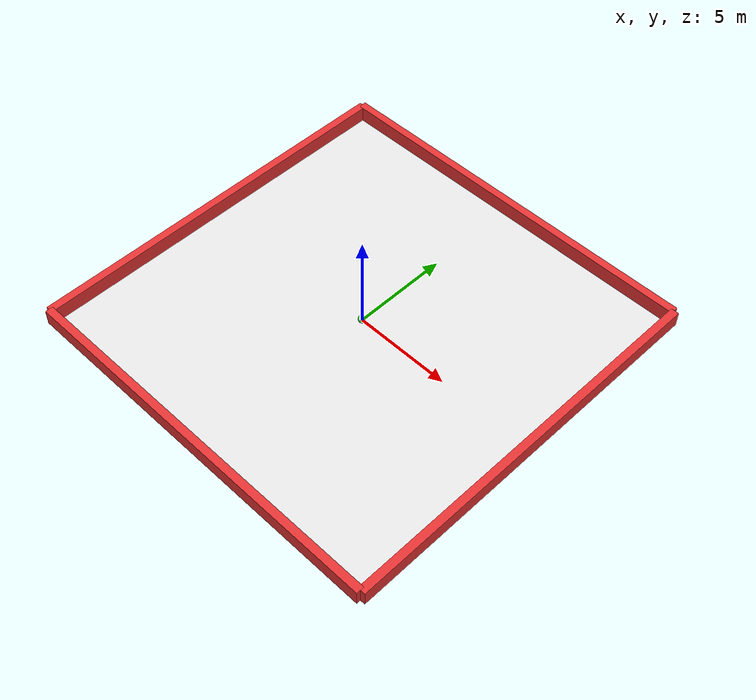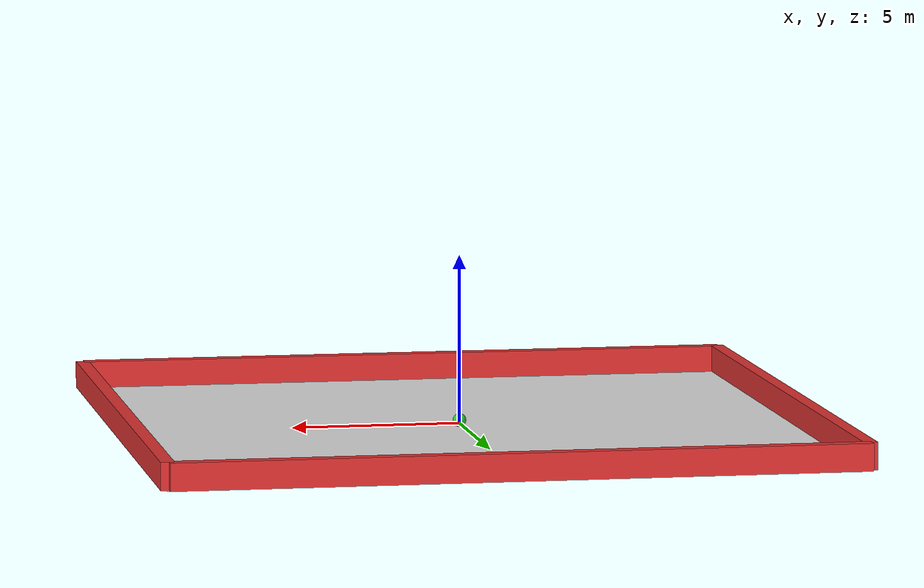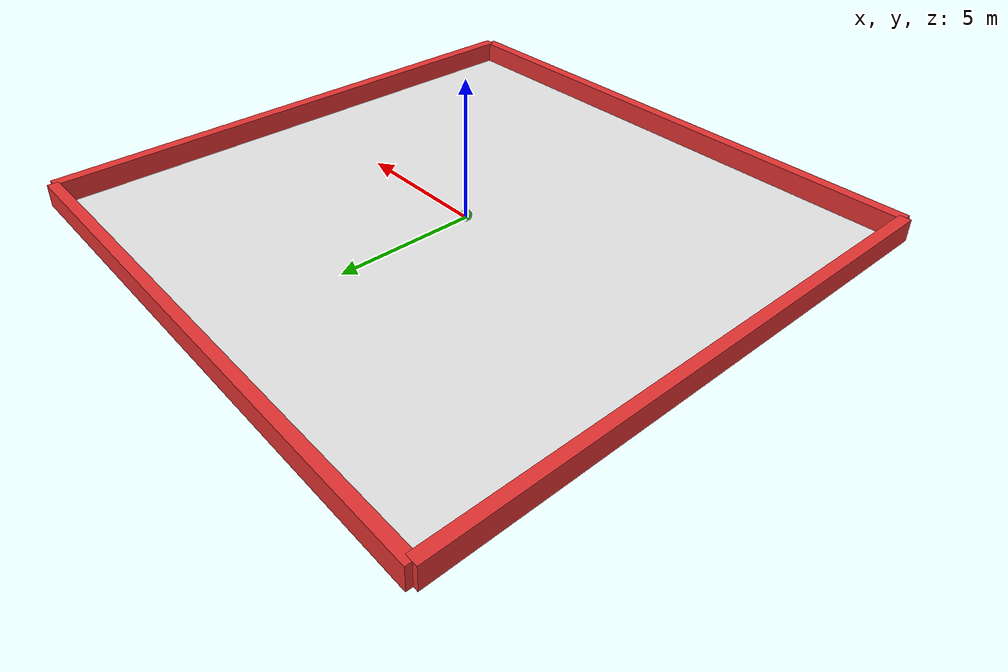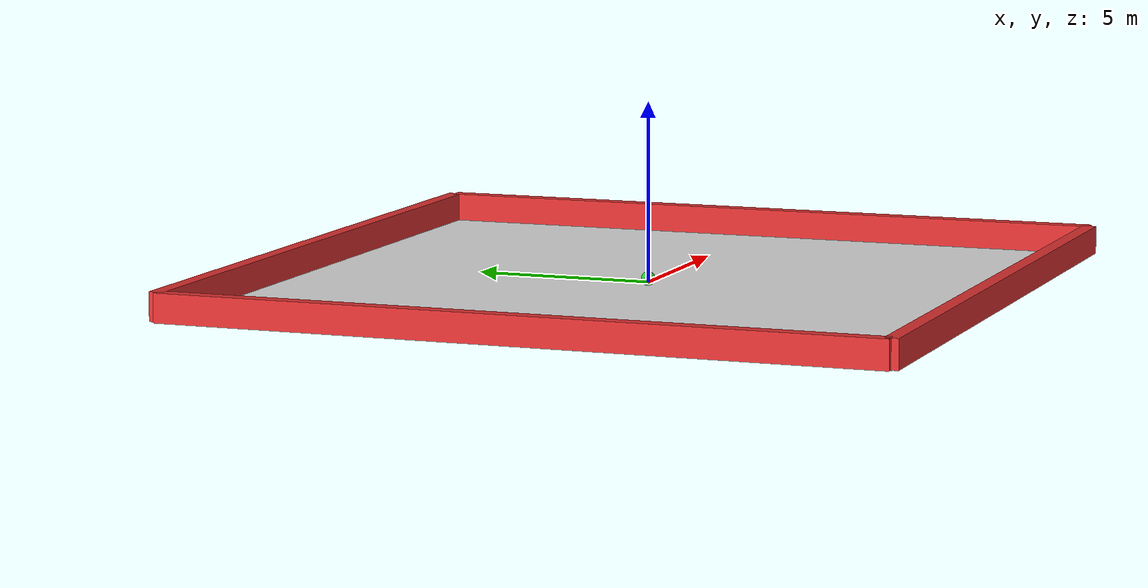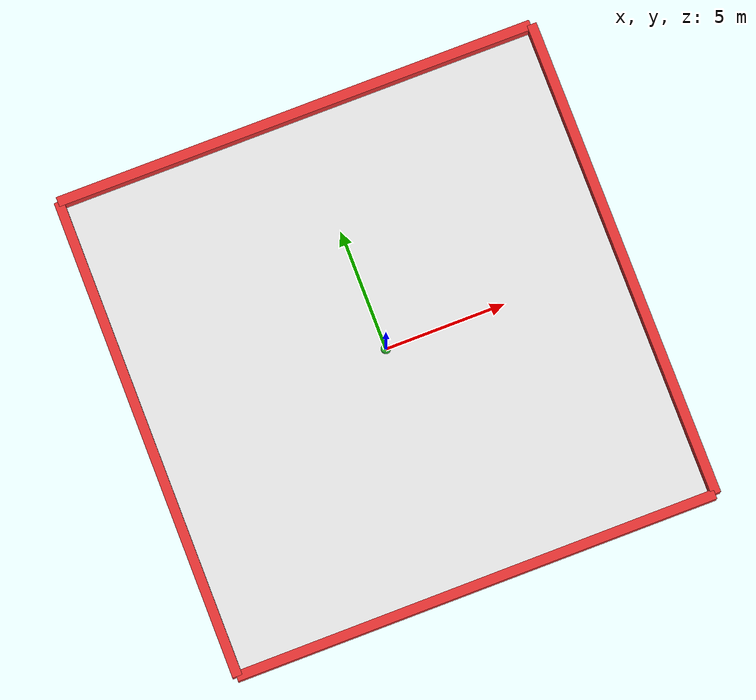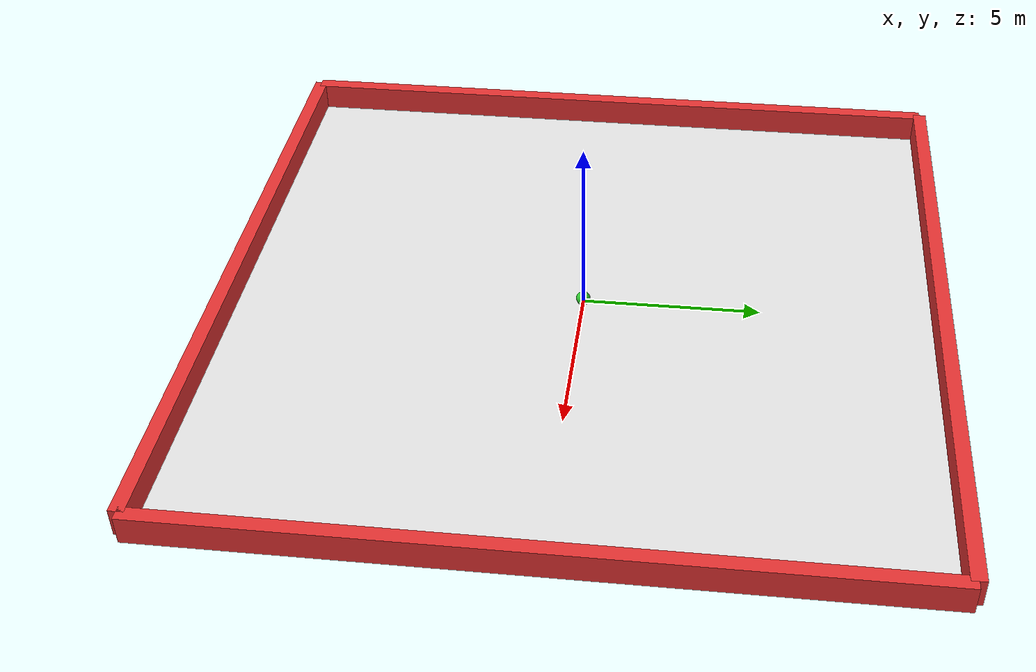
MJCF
<mujoco model="Sphere">
	<compiler angle="radian" inertiafromgeom="true"/>
	<default>
		<geom contype="0" friction="1 0.1 0.1" rgba="0.7 0.7 0 1"/>
	</default>
	<option gravity="0 0 -9.81" integrator="RK4" timestep="0.01"/>
	<worldbody>
		<geom conaffinity="0" contype="0" name="ground" pos="0 0 -0.1" rgba="0.9 0.9 0.9 1" size="10 10 0.1" type="plane"/>
		<!-- Sphere -->
		<body name="ball" pos="0 0 0.1">
            <geom friction= "2.0" conaffinity="1" contype="1" density="1000" type="sphere" size="0.2" rgba="0.2 0.8 0.2 1"/>
            <joint axis="1 0 0" name="x-rotor" pos="0 0 0.2" type="slide"/>
            <joint axis="0 1 0" name="y-rotor" pos="0 0 0.2" type="slide"/>

        </body>

		<!-- Wall -->
		<body name="wall-up" pos="-10 0 0.3">
            <geom friction= "2.0" conaffinity="1" contype="1" density="1000" size="0.2 10 0.4" rgba="0.9 0.2 0.2 1" type="box"/>
        </body>
        <body name="wall-left" pos="-0.04 -10 0.3">
            <geom conaffinity="1" friction= "2.0" contype="1" density="1000" size="10 0.2 0.4" rgba="0.9 0.2 0.2 1" type="box"/>
        </body>
        <body name="wall-bottom" pos="10 0 0.3">
            <geom friction= "2.0" conaffinity="1" contype="1" density="1000" size="0.2 10 0.4" rgba="0.9 0.2 0.2 1" type="box"/>
        </body>
        <body name="wall-right" pos="-0.04 10.0 0.3">
            <geom conaffinity="1" friction= "2.0" contype="1" density="1000" size="10 0.2 0.4" rgba="0.9 0.2 0.2 1" type="box"/>
        </body>

	</worldbody>
	<actuator>
        <motor ctrllimited="true" ctrlrange="-3 3" gear="150.0" joint="x-rotor"/>
        <motor ctrllimited="true" ctrlrange="-3 3" gear="150.0" joint="y-rotor"/>
    </actuator>
</mujoco>
